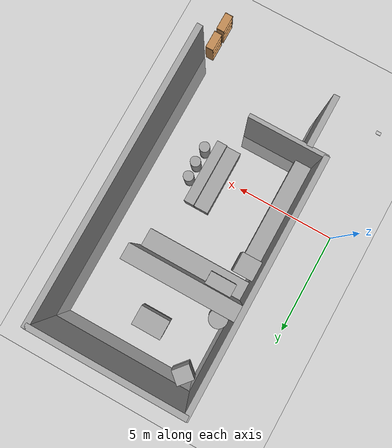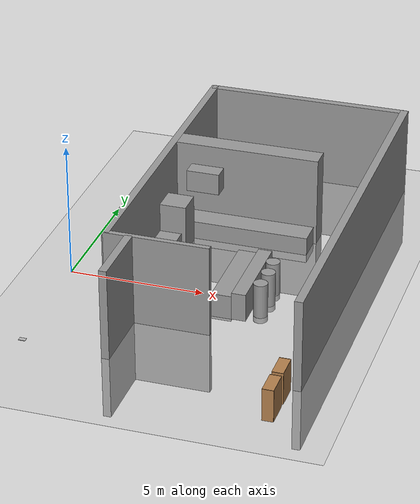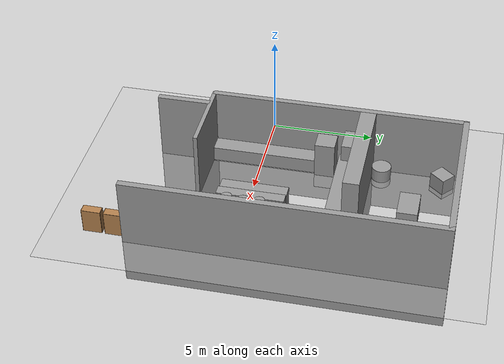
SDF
<sdf version="1.6">
 <world name="default">
  <light name="sun" type="directional">
   <pose>0 0 10 0 -0 0</pose>
   <diffuse>0.8 0.8 0.8 1</diffuse>
   <specular>0.2 0.2 0.2 1</specular>
   <attenuation>
    <range>1000</range>
    <constant>0.9</constant>
    <linear>0.01</linear>
    <quadratic>0.001</quadratic>
   </attenuation>
   <direction>-0.5 0.1 -0.9</direction>
   <spot><inner_angle>0</inner_angle><outer_angle>0</outer_angle><falloff>0</falloff></spot>
  </light>
  <model name="ground_plane">
   <static>1</static>
   <link name="link">
    <collision name="collision">
     <geometry><plane><normal>0 0 1</normal><size>100 100</size></plane></geometry>
     <surface>
      <contact><collide_bitmask>65535</collide_bitmask></contact>
      <friction><ode><mu>100</mu><mu2>50</mu2></ode></friction>
     </surface>
    </collision>
    <visual name="visual">
     <cast_shadows>0</cast_shadows>
     <geometry><plane><normal>0 0 1</normal><size>100 100</size></plane></geometry>
     <material>
      <script><uri>file://media/materials/scripts/gazebo.material</uri><name>Gazebo/Grey</name></script>
     </material>
    </visual>
   </link>
  </model>
  <gravity>0 0 -9.8</gravity>
  <magnetic_field>6e-06 2.3e-05 -4.2e-05</magnetic_field>
  <atmosphere type="adiabatic"/>
  <physics name="default_physics" default="0" type="ode">
   <max_step_size>0.001</max_step_size>
   <real_time_factor>1</real_time_factor>
   <real_time_update_rate>1000</real_time_update_rate>
  </physics>
  <scene><ambient>0.4 0.4 0.4 1</ambient><background>0.7 0.7 0.7 1</background><shadows>1</shadows></scene>
  <spherical_coordinates>
   <surface_model>EARTH_WGS84</surface_model>
   <latitude_deg>0</latitude_deg>
   <longitude_deg>0</longitude_deg>
   <elevation>0</elevation>
   <heading_deg>0</heading_deg>
  </spherical_coordinates>
  <model name="Kitchen-Collision">
   <link name="link_0">
    <inertial>
     <mass>4.16127</mass>
     <inertia><ixx>13.7012</ixx><ixy>0</ixy><ixz>0</ixz><iyy>11.4901</iyy><iyz>0</iyz><izz>2.26737</izz></inertia>
    </inertial>
    <pose>-2.12883 -7.21047 0 0 -0 0</pose>
    <visual name="visual">
     <geometry><box><size>0.28475 2.54114 5.7492</size></box></geometry>
     <material>
      <lighting>1</lighting>
      <script><uri>file://media/materials/scripts/gazebo.material</uri><name>Gazebo/Grey</name></script>
      <shader type="pixel"><normal_map>__default__</normal_map></shader>
      <ambient>0.3 0.3 0.3 1</ambient>
      <diffuse>0.7 0.7 0.7 1</diffuse>
      <specular>0.01 0.01 0.01 1</specular>
      <emissive>0 0 0 1</emissive>
     </material>
    </visual>
    <collision name="collision">
     <geometry><box><size>0.28475 2.54114 5.7492</size></box></geometry>
     <surface>
      <friction>
       <ode><mu>1</mu><mu2>1</mu2><fdir1>0 0 0</fdir1><slip1>0</slip1><slip2>0</slip2></ode>
       <torsional>
        <coefficient>1</coefficient>
        <patch_radius>0</patch_radius>
        <surface_radius>0</surface_radius>
        <use_patch_radius>1</use_patch_radius>
        <ode><slip>0</slip></ode>
       </torsional>
      </friction>
      <bounce><restitution_coefficient>0</restitution_coefficient><threshold>1e+06</threshold></bounce>
      <contact>
       <collide_without_contact>0</collide_without_contact>
       <collide_without_contact_bitmask>1</collide_without_contact_bitmask>
       <collide_bitmask>1</collide_bitmask>
       <ode>
        <soft_cfm>0</soft_cfm>
        <soft_erp>0.2</soft_erp>
        <kp>1e+13</kp>
        <kd>1</kd>
        <max_vel>0.01</max_vel>
        <min_depth>0</min_depth>
       </ode>
       <bullet>
        <split_impulse>1</split_impulse>
        <split_impulse_penetration_threshold>-0.01</split_impulse_penetration_threshold>
        <soft_cfm>0</soft_cfm>
        <soft_erp>0.2</soft_erp>
        <kp>1e+13</kp>
        <kd>1</kd>
       </bullet>
      </contact>
     </surface>
    </collision>
   </link>
   <link name="link_1">
    <inertial>
     <mass>24.9917</mass>
     <inertia><ixx>527.469</ixx><ixy>0</ixy><ixz>0</ixz><iyy>67.9263</iyy><iyz>0</iyz><izz>459.905</izz></inertia>
    </inertial>
    <pose>4.56849 -0.998393 -0 0 -0 0</pose>
    <visual name="visual">
     <geometry><box><size>0.294903 14.8573 5.7492</size></box></geometry>
     <material>
      <lighting>1</lighting>
      <script><uri>file://media/materials/scripts/gazebo.material</uri><name>Gazebo/Grey</name></script>
      <shader type="pixel"><normal_map>__default__</normal_map></shader>
      <ambient>0.3 0.3 0.3 1</ambient>
      <diffuse>0.7 0.7 0.7 1</diffuse>
      <specular>0.01 0.01 0.01 1</specular>
      <emissive>0 0 0 1</emissive>
     </material>
    </visual>
    <collision name="collision">
     <geometry><box><size>0.294903 14.8573 5.7492</size></box></geometry>
     <surface>
      <friction>
       <ode><mu>1</mu><mu2>1</mu2><fdir1>0 0 0</fdir1><slip1>0</slip1><slip2>0</slip2></ode>
       <torsional>
        <coefficient>1</coefficient>
        <patch_radius>0</patch_radius>
        <surface_radius>0</surface_radius>
        <use_patch_radius>1</use_patch_radius>
        <ode><slip>0</slip></ode>
       </torsional>
      </friction>
      <bounce><restitution_coefficient>0</restitution_coefficient><threshold>1e+06</threshold></bounce>
      <contact>
       <collide_without_contact>0</collide_without_contact>
       <collide_without_contact_bitmask>1</collide_without_contact_bitmask>
       <collide_bitmask>1</collide_bitmask>
       <ode>
        <soft_cfm>0</soft_cfm>
        <soft_erp>0.2</soft_erp>
        <kp>1e+13</kp>
        <kd>1</kd>
        <max_vel>0.01</max_vel>
        <min_depth>0</min_depth>
       </ode>
       <bullet>
        <split_impulse>1</split_impulse>
        <split_impulse_penetration_threshold>-0.01</split_impulse_penetration_threshold>
        <soft_cfm>0</soft_cfm>
        <soft_erp>0.2</soft_erp>
        <kp>1e+13</kp>
        <kd>1</kd>
       </bullet>
      </contact>
     </surface>
    </collision>
   </link>
   <link name="link_10">
    <inertial>
     <mass>2.5255</mass>
     <inertia><ixx>1.58164</ixx><ixy>0</ixy><ixz>0</ixz><iyy>1.60172</iyy><iyz>0</iyz><izz>0.415001</izz></inertia>
    </inertial>
    <pose>-2.3651 -0.233248 -0 0 -0 0</pose>
    <visual name="visual">
     <geometry><box><size>1.01669 0.968627 2.56456</size></box></geometry>
     <material>
      <lighting>1</lighting>
      <script><uri>file://media/materials/scripts/gazebo.material</uri><name>Gazebo/Grey</name></script>
      <shader type="pixel"/>
     </material>
    </visual>
    <collision name="collision">
     <geometry><box><size>1.01669 0.968627 2.56456</size></box></geometry>
     <surface>
      <friction>
       <ode><mu>1</mu><mu2>1</mu2><fdir1>0 0 0</fdir1><slip1>0</slip1><slip2>0</slip2></ode>
       <torsional>
        <coefficient>1</coefficient>
        <patch_radius>0</patch_radius>
        <surface_radius>0</surface_radius>
        <use_patch_radius>1</use_patch_radius>
        <ode><slip>0</slip></ode>
       </torsional>
      </friction>
      <bounce><restitution_coefficient>0</restitution_coefficient><threshold>1e+06</threshold></bounce>
      <contact>
       <collide_without_contact>0</collide_without_contact>
       <collide_without_contact_bitmask>1</collide_without_contact_bitmask>
       <collide_bitmask>1</collide_bitmask>
       <ode>
        <soft_cfm>0</soft_cfm>
        <soft_erp>0.2</soft_erp>
        <kp>1e+13</kp>
        <kd>1</kd>
        <max_vel>0.01</max_vel>
        <min_depth>0</min_depth>
       </ode>
       <bullet>
        <split_impulse>1</split_impulse>
        <split_impulse_penetration_threshold>-0.01</split_impulse_penetration_threshold>
        <soft_cfm>0</soft_cfm>
        <soft_erp>0.2</soft_erp>
        <kp>1e+13</kp>
        <kd>1</kd>
       </bullet>
      </contact>
     </surface>
    </collision>
   </link>
   <link name="link_11">
    <inertial>
     <mass>0.636301</mass>
     <inertia>
      <ixx>0.0562669</ixx>
      <ixy>0</ixy>
      <ixz>0</ixz>
      <iyy>0.11806</iyy>
      <iyz>0</iyz>
      <izz>0.102807</izz>
     </inertia>
    </inertial>
    <pose>-1.64952 0.993595 1.66197 0 -0 0</pose>
    <visual name="visual">
     <geometry><box><size>1.24583 0.621885 0.821216</size></box></geometry>
     <material>
      <lighting>1</lighting>
      <script><uri>file://media/materials/scripts/gazebo.material</uri><name>Gazebo/Grey</name></script>
      <shader type="pixel"/>
     </material>
    </visual>
    <collision name="collision">
     <geometry><box><size>1.24583 0.621885 0.821216</size></box></geometry>
     <surface>
      <friction>
       <ode><mu>1</mu><mu2>1</mu2><fdir1>0 0 0</fdir1><slip1>0</slip1><slip2>0</slip2></ode>
       <torsional>
        <coefficient>1</coefficient>
        <patch_radius>0</patch_radius>
        <surface_radius>0</surface_radius>
        <use_patch_radius>1</use_patch_radius>
        <ode><slip>0</slip></ode>
       </torsional>
      </friction>
      <bounce><restitution_coefficient>0</restitution_coefficient><threshold>1e+06</threshold></bounce>
      <contact>
       <collide_without_contact>0</collide_without_contact>
       <collide_without_contact_bitmask>1</collide_without_contact_bitmask>
       <collide_bitmask>1</collide_bitmask>
       <ode>
        <soft_cfm>0</soft_cfm>
        <soft_erp>0.2</soft_erp>
        <kp>1e+13</kp>
        <kd>1</kd>
        <max_vel>0.01</max_vel>
        <min_depth>0</min_depth>
       </ode>
       <bullet>
        <split_impulse>1</split_impulse>
        <split_impulse_penetration_threshold>-0.01</split_impulse_penetration_threshold>
        <soft_cfm>0</soft_cfm>
        <soft_erp>0.2</soft_erp>
        <kp>1e+13</kp>
        <kd>1</kd>
       </bullet>
      </contact>
     </surface>
    </collision>
   </link>
   <link name="link_12">
    <inertial>
     <mass>3.4765</mass>
     <inertia><ixx>8.28125</ixx><ixy>0</ixy><ixz>0</ixz><iyy>0.381759</iyy><iyz>0</iyz><izz>8.30675</izz></inertia>
    </inertial>
    <pose>-2.44063 -3.33135 -0.197222 0 -0 0</pose>
    <visual name="visual">
     <geometry><box><size>0.83838 5.28866 0.784129</size></box></geometry>
     <material>
      <lighting>1</lighting>
      <script><uri>file://media/materials/scripts/gazebo.material</uri><name>Gazebo/Grey</name></script>
      <shader type="pixel"/>
     </material>
    </visual>
    <collision name="collision">
     <geometry><box><size>0.83838 5.28866 0.784129</size></box></geometry>
     <surface>
      <friction>
       <ode><mu>1</mu><mu2>1</mu2><fdir1>0 0 0</fdir1><slip1>0</slip1><slip2>0</slip2></ode>
       <torsional>
        <coefficient>1</coefficient>
        <patch_radius>0</patch_radius>
        <surface_radius>0</surface_radius>
        <use_patch_radius>1</use_patch_radius>
        <ode><slip>0</slip></ode>
       </torsional>
      </friction>
      <bounce><restitution_coefficient>0</restitution_coefficient><threshold>1e+06</threshold></bounce>
      <contact>
       <collide_without_contact>0</collide_without_contact>
       <collide_without_contact_bitmask>1</collide_without_contact_bitmask>
       <collide_bitmask>1</collide_bitmask>
       <ode>
        <soft_cfm>0</soft_cfm>
        <soft_erp>0.2</soft_erp>
        <kp>1e+13</kp>
        <kd>1</kd>
        <max_vel>0.01</max_vel>
        <min_depth>0</min_depth>
       </ode>
       <bullet>
        <split_impulse>1</split_impulse>
        <split_impulse_penetration_threshold>-0.01</split_impulse_penetration_threshold>
        <soft_cfm>0</soft_cfm>
        <soft_erp>0.2</soft_erp>
        <kp>1e+13</kp>
        <kd>1</kd>
       </bullet>
      </contact>
     </surface>
    </collision>
   </link>
   <link name="link_13">
    <inertial>
     <mass>2.3469</mass>
     <inertia><ixx>2.2474</ixx><ixy>0</ixy><ixz>0</ixz><iyy>0.298253</iyy><iyz>0</iyz><izz>2.1545</izz></inertia>
    </inertial>
    <pose>0.783741 -3.13622 -0.129375 0 -0 0</pose>
    <visual name="visual">
     <geometry><box><size>0.724573 3.23901 1</size></box></geometry>
     <material>
      <lighting>1</lighting>
      <script><uri>file://media/materials/scripts/gazebo.material</uri><name>Gazebo/Grey</name></script>
      <shader type="pixel"/>
     </material>
    </visual>
    <collision name="collision">
     <geometry><box><size>0.724573 3.23901 1</size></box></geometry>
     <surface>
      <friction>
       <ode><mu>1</mu><mu2>1</mu2><fdir1>0 0 0</fdir1><slip1>0</slip1><slip2>0</slip2></ode>
       <torsional>
        <coefficient>1</coefficient>
        <patch_radius>0</patch_radius>
        <surface_radius>0</surface_radius>
        <use_patch_radius>1</use_patch_radius>
        <ode><slip>0</slip></ode>
       </torsional>
      </friction>
      <bounce><restitution_coefficient>0</restitution_coefficient><threshold>1e+06</threshold></bounce>
      <contact>
       <collide_without_contact>0</collide_without_contact>
       <collide_without_contact_bitmask>1</collide_without_contact_bitmask>
       <collide_bitmask>1</collide_bitmask>
       <ode>
        <soft_cfm>0</soft_cfm>
        <soft_erp>0.2</soft_erp>
        <kp>1e+13</kp>
        <kd>1</kd>
        <max_vel>0.01</max_vel>
        <min_depth>0</min_depth>
       </ode>
       <bullet>
        <split_impulse>1</split_impulse>
        <split_impulse_penetration_threshold>-0.01</split_impulse_penetration_threshold>
        <soft_cfm>0</soft_cfm>
        <soft_erp>0.2</soft_erp>
        <kp>1e+13</kp>
        <kd>1</kd>
       </bullet>
      </contact>
     </surface>
    </collision>
   </link>
   <link name="link_14">
    <inertial>
     <mass>1.74764</mass>
     <inertia><ixx>1.6992</ixx><ixy>0</ixy><ixz>0</ixz><iyy>0.198313</iyy><iyz>0</iyz><izz>1.5775</izz></inertia>
    </inertial>
    <pose>1.41922 -3.13976 -0 0 -0 0</pose>
    <visual name="visual">
     <geometry><box><size>0.512865 3.25095 1.04817</size></box></geometry>
     <material>
      <lighting>1</lighting>
      <script><uri>file://media/materials/scripts/gazebo.material</uri><name>Gazebo/Grey</name></script>
      <shader type="pixel"/>
     </material>
    </visual>
    <collision name="collision">
     <geometry><box><size>0.512865 3.25095 1.04817</size></box></geometry>
     <surface>
      <friction>
       <ode><mu>1</mu><mu2>1</mu2><fdir1>0 0 0</fdir1><slip1>0</slip1><slip2>0</slip2></ode>
       <torsional>
        <coefficient>1</coefficient>
        <patch_radius>0</patch_radius>
        <surface_radius>0</surface_radius>
        <use_patch_radius>1</use_patch_radius>
        <ode><slip>0</slip></ode>
       </torsional>
      </friction>
      <bounce><restitution_coefficient>0</restitution_coefficient><threshold>1e+06</threshold></bounce>
      <contact>
       <collide_without_contact>0</collide_without_contact>
       <collide_without_contact_bitmask>1</collide_without_contact_bitmask>
       <collide_bitmask>1</collide_bitmask>
       <ode>
        <soft_cfm>0</soft_cfm>
        <soft_erp>0.2</soft_erp>
        <kp>1e+13</kp>
        <kd>1</kd>
        <max_vel>0.01</max_vel>
        <min_depth>0</min_depth>
       </ode>
       <bullet>
        <split_impulse>1</split_impulse>
        <split_impulse_penetration_threshold>-0.01</split_impulse_penetration_threshold>
        <soft_cfm>0</soft_cfm>
        <soft_erp>0.2</soft_erp>
        <kp>1e+13</kp>
        <kd>1</kd>
       </bullet>
      </contact>
     </surface>
    </collision>
   </link>
   <link name="link_15">
    <inertial>
     <mass>0.395316</mass>
     <inertia>
      <ixx>0.0801611</ixx>
      <ixy>0</ixy>
      <ixz>0</ixz>
      <iyy>0.0801611</iyy>
      <iyz>0</iyz>
      <izz>0.0130671</izz>
     </inertia>
    </inertial>
    <pose>2.02268 -2.59375 0 0 -0 0</pose>
    <visual name="visual">
     <geometry><cylinder><radius>0.257118</radius><length>1.49499</length></cylinder></geometry>
     <material>
      <lighting>1</lighting>
      <script><uri>file://media/materials/scripts/gazebo.material</uri><name>Gazebo/Grey</name></script>
      <shader type="pixel"/>
     </material>
    </visual>
    <collision name="collision">
     <geometry><cylinder><radius>0.257118</radius><length>1.49499</length></cylinder></geometry>
     <surface>
      <friction>
       <ode><mu>1</mu><mu2>1</mu2><fdir1>0 0 0</fdir1><slip1>0</slip1><slip2>0</slip2></ode>
       <torsional>
        <coefficient>1</coefficient>
        <patch_radius>0</patch_radius>
        <surface_radius>0</surface_radius>
        <use_patch_radius>1</use_patch_radius>
        <ode><slip>0</slip></ode>
       </torsional>
      </friction>
      <bounce><restitution_coefficient>0</restitution_coefficient><threshold>1e+06</threshold></bounce>
      <contact>
       <collide_without_contact>0</collide_without_contact>
       <collide_without_contact_bitmask>1</collide_without_contact_bitmask>
       <collide_bitmask>1</collide_bitmask>
       <ode>
        <soft_cfm>0</soft_cfm>
        <soft_erp>0.2</soft_erp>
        <kp>1e+13</kp>
        <kd>1</kd>
        <max_vel>0.01</max_vel>
        <min_depth>0</min_depth>
       </ode>
       <bullet>
        <split_impulse>1</split_impulse>
        <split_impulse_penetration_threshold>-0.01</split_impulse_penetration_threshold>
        <soft_cfm>0</soft_cfm>
        <soft_erp>0.2</soft_erp>
        <kp>1e+13</kp>
        <kd>1</kd>
       </bullet>
      </contact>
     </surface>
    </collision>
   </link>
   <link name="link_15_clone">
    <inertial>
     <mass>0.395316</mass>
     <inertia>
      <ixx>0.0801611</ixx>
      <ixy>0</ixy>
      <ixz>0</ixz>
      <iyy>0.0801611</iyy>
      <iyz>0</iyz>
      <izz>0.0130671</izz>
     </inertia>
    </inertial>
    <pose>2.07243 -3.34973 -0 0 -0 0</pose>
    <visual name="visual">
     <geometry><cylinder><radius>0.257118</radius><length>1.49499</length></cylinder></geometry>
     <material>
      <lighting>1</lighting>
      <script><uri>file://media/materials/scripts/gazebo.material</uri><name>Gazebo/Grey</name></script>
      <shader type="pixel"/>
     </material>
    </visual>
    <collision name="collision">
     <geometry><cylinder><radius>0.257118</radius><length>1.49499</length></cylinder></geometry>
     <surface>
      <friction>
       <ode><mu>1</mu><mu2>1</mu2><fdir1>0 0 0</fdir1><slip1>0</slip1><slip2>0</slip2></ode>
       <torsional>
        <coefficient>1</coefficient>
        <patch_radius>0</patch_radius>
        <surface_radius>0</surface_radius>
        <use_patch_radius>1</use_patch_radius>
        <ode><slip>0</slip></ode>
       </torsional>
      </friction>
      <bounce><restitution_coefficient>0</restitution_coefficient><threshold>1e+06</threshold></bounce>
      <contact>
       <collide_without_contact>0</collide_without_contact>
       <collide_without_contact_bitmask>1</collide_without_contact_bitmask>
       <collide_bitmask>1</collide_bitmask>
       <ode>
        <soft_cfm>0</soft_cfm>
        <soft_erp>0.2</soft_erp>
        <kp>1e+13</kp>
        <kd>1</kd>
        <max_vel>0.01</max_vel>
        <min_depth>0</min_depth>
       </ode>
       <bullet>
        <split_impulse>1</split_impulse>
        <split_impulse_penetration_threshold>-0.01</split_impulse_penetration_threshold>
        <soft_cfm>0</soft_cfm>
        <soft_erp>0.2</soft_erp>
        <kp>1e+13</kp>
        <kd>1</kd>
       </bullet>
      </contact>
     </surface>
    </collision>
   </link>
   <link name="link_15_clone_0">
    <inertial>
     <mass>0.395316</mass>
     <inertia>
      <ixx>0.0801611</ixx>
      <ixy>0</ixy>
      <ixz>0</ixz>
      <iyy>0.0801611</iyy>
      <iyz>0</iyz>
      <izz>0.0130671</izz>
     </inertia>
    </inertial>
    <pose>2.03304 -4.15741 0 0 -0 0</pose>
    <visual name="visual">
     <geometry><cylinder><radius>0.257118</radius><length>1.49499</length></cylinder></geometry>
     <material>
      <lighting>1</lighting>
      <script><uri>file://media/materials/scripts/gazebo.material</uri><name>Gazebo/Grey</name></script>
      <shader type="pixel"/>
     </material>
    </visual>
    <collision name="collision">
     <geometry><cylinder><radius>0.257118</radius><length>1.49499</length></cylinder></geometry>
     <surface>
      <friction>
       <ode><mu>1</mu><mu2>1</mu2><fdir1>0 0 0</fdir1><slip1>0</slip1><slip2>0</slip2></ode>
       <torsional>
        <coefficient>1</coefficient>
        <patch_radius>0</patch_radius>
        <surface_radius>0</surface_radius>
        <use_patch_radius>1</use_patch_radius>
        <ode><slip>0</slip></ode>
       </torsional>
      </friction>
      <bounce><restitution_coefficient>0</restitution_coefficient><threshold>1e+06</threshold></bounce>
      <contact>
       <collide_without_contact>0</collide_without_contact>
       <collide_without_contact_bitmask>1</collide_without_contact_bitmask>
       <collide_bitmask>1</collide_bitmask>
       <ode>
        <soft_cfm>0</soft_cfm>
        <soft_erp>0.2</soft_erp>
        <kp>1e+13</kp>
        <kd>1</kd>
        <max_vel>0.01</max_vel>
        <min_depth>0</min_depth>
       </ode>
       <bullet>
        <split_impulse>1</split_impulse>
        <split_impulse_penetration_threshold>-0.01</split_impulse_penetration_threshold>
        <soft_cfm>0</soft_cfm>
        <soft_erp>0.2</soft_erp>
        <kp>1e+13</kp>
        <kd>1</kd>
       </bullet>
      </contact>
     </surface>
    </collision>
   </link>
   <link name="link_2">
    <inertial>
     <mass>12.2812</mass>
     <inertia><ixx>33.4103</ixx><ixy>0</ixy><ixz>0</ixz><iyy>93.3622</iyy><iyz>0</iyz><izz>60.1135</izz></inertia>
    </inertial>
    <pose>0.773767 6.29954 -0 0 -0 0</pose>
    <visual name="visual">
     <geometry><box><size>7.65885 0.281009 5.7492</size></box></geometry>
     <material>
      <lighting>1</lighting>
      <script><uri>file://media/materials/scripts/gazebo.material</uri><name>Gazebo/Grey</name></script>
      <shader type="pixel"><normal_map>__default__</normal_map></shader>
      <ambient>0.3 0.3 0.3 1</ambient>
      <diffuse>0.7 0.7 0.7 1</diffuse>
      <specular>0.01 0.01 0.01 1</specular>
      <emissive>0 0 0 1</emissive>
     </material>
    </visual>
    <collision name="collision">
     <geometry><box><size>7.65885 0.281009 5.7492</size></box></geometry>
     <surface>
      <friction>
       <ode><mu>1</mu><mu2>1</mu2><fdir1>0 0 0</fdir1><slip1>0</slip1><slip2>0</slip2></ode>
       <torsional>
        <coefficient>1</coefficient>
        <patch_radius>0</patch_radius>
        <surface_radius>0</surface_radius>
        <use_patch_radius>1</use_patch_radius>
        <ode><slip>0</slip></ode>
       </torsional>
      </friction>
      <bounce><restitution_coefficient>0</restitution_coefficient><threshold>1e+06</threshold></bounce>
      <contact>
       <collide_without_contact>0</collide_without_contact>
       <collide_without_contact_bitmask>1</collide_without_contact_bitmask>
       <collide_bitmask>1</collide_bitmask>
       <ode>
        <soft_cfm>0</soft_cfm>
        <soft_erp>0.2</soft_erp>
        <kp>1e+13</kp>
        <kd>1</kd>
        <max_vel>0.01</max_vel>
        <min_depth>0</min_depth>
       </ode>
       <bullet>
        <split_impulse>1</split_impulse>
        <split_impulse_penetration_threshold>-0.01</split_impulse_penetration_threshold>
        <soft_cfm>0</soft_cfm>
        <soft_erp>0.2</soft_erp>
        <kp>1e+13</kp>
        <kd>1</kd>
       </bullet>
      </contact>
     </surface>
    </collision>
   </link>
   <link name="link_3">
    <inertial>
     <mass>19.2476</mass>
     <inertia><ixx>297.609</ixx><ixy>0</ixy><ixz>0</ixz><iyy>52.3469</iyy><iyz>0</iyz><izz>245.501</izz></inertia>
    </inertial>
    <pose>-2.983 0.238067 -0 0 -0 0</pose>
    <visual name="visual">
     <geometry><box><size>0.272676 12.3687 5.7492</size></box></geometry>
     <material>
      <lighting>1</lighting>
      <script><uri>file://media/materials/scripts/gazebo.material</uri><name>Gazebo/Grey</name></script>
      <shader type="pixel"><normal_map>__default__</normal_map></shader>
      <ambient>0.3 0.3 0.3 1</ambient>
      <diffuse>0.7 0.7 0.7 1</diffuse>
      <specular>0.01 0.01 0.01 1</specular>
      <emissive>0 0 0 1</emissive>
     </material>
    </visual>
    <collision name="collision">
     <geometry><box><size>0.272676 12.3687 5.7492</size></box></geometry>
     <surface>
      <friction>
       <ode><mu>1</mu><mu2>1</mu2><fdir1>0 0 0</fdir1><slip1>0</slip1><slip2>0</slip2></ode>
       <torsional>
        <coefficient>1</coefficient>
        <patch_radius>0</patch_radius>
        <surface_radius>0</surface_radius>
        <use_patch_radius>1</use_patch_radius>
        <ode><slip>0</slip></ode>
       </torsional>
      </friction>
      <bounce><restitution_coefficient>0</restitution_coefficient><threshold>1e+06</threshold></bounce>
      <contact>
       <collide_without_contact>0</collide_without_contact>
       <collide_without_contact_bitmask>1</collide_without_contact_bitmask>
       <collide_bitmask>1</collide_bitmask>
       <ode>
        <soft_cfm>0</soft_cfm>
        <soft_erp>0.2</soft_erp>
        <kp>1e+13</kp>
        <kd>1</kd>
        <max_vel>0.01</max_vel>
        <min_depth>0</min_depth>
       </ode>
       <bullet>
        <split_impulse>1</split_impulse>
        <split_impulse_penetration_threshold>-0.01</split_impulse_penetration_threshold>
        <soft_cfm>0</soft_cfm>
        <soft_erp>0.2</soft_erp>
        <kp>1e+13</kp>
        <kd>1</kd>
       </bullet>
      </contact>
     </surface>
    </collision>
   </link>
   <link name="link_4">
    <inertial>
     <mass>26.7901</mass>
     <inertia><ixx>89.7843</ixx><ixy>0</ixy><ixz>0</ixz><iyy>157.635</iyy><iyz>0</iyz><izz>70.4608</izz></inertia>
    </inertial>
    <pose>-0.230433 1.67127 -0 0 -0 0</pose>
    <visual name="visual">
     <geometry><box><size>5.56567 0.764598 5.74919</size></box></geometry>
     <material>
      <lighting>1</lighting>
      <script><uri>file://media/materials/scripts/gazebo.material</uri><name>Gazebo/Grey</name></script>
      <shader type="pixel"><normal_map>__default__</normal_map></shader>
      <ambient>0.3 0.3 0.3 1</ambient>
      <diffuse>0.7 0.7 0.7 1</diffuse>
      <specular>0.01 0.01 0.01 1</specular>
      <emissive>0 0 0 1</emissive>
     </material>
    </visual>
    <collision name="collision">
     <geometry><box><size>5.56567 0.764598 5.74919</size></box></geometry>
     <surface>
      <friction>
       <ode><mu>1</mu><mu2>1</mu2><fdir1>0 0 0</fdir1><slip1>0</slip1><slip2>0</slip2></ode>
       <torsional>
        <coefficient>1</coefficient>
        <patch_radius>0</patch_radius>
        <surface_radius>0</surface_radius>
        <use_patch_radius>1</use_patch_radius>
        <ode><slip>0</slip></ode>
       </torsional>
      </friction>
      <bounce><restitution_coefficient>0</restitution_coefficient><threshold>1e+06</threshold></bounce>
      <contact>
       <collide_without_contact>0</collide_without_contact>
       <collide_without_contact_bitmask>1</collide_without_contact_bitmask>
       <collide_bitmask>1</collide_bitmask>
       <ode>
        <soft_cfm>0</soft_cfm>
        <soft_erp>0.2</soft_erp>
        <kp>1e+13</kp>
        <kd>1</kd>
        <max_vel>0.01</max_vel>
        <min_depth>0</min_depth>
       </ode>
       <bullet>
        <split_impulse>1</split_impulse>
        <split_impulse_penetration_threshold>-0.01</split_impulse_penetration_threshold>
        <soft_cfm>0</soft_cfm>
        <soft_erp>0.2</soft_erp>
        <kp>1e+13</kp>
        <kd>1</kd>
       </bullet>
      </contact>
     </surface>
    </collision>
   </link>
   <link name="link_5">
    <inertial>
     <mass>4.27559</mass>
     <inertia><ixx>11.7131</ixx><ixy>0</ixy><ixz>0</ixz><iyy>16.9067</iyy><iyz>0</iyz><izz>5.22079</izz></inertia>
    </inertial>
    <pose>-1.14694 -5.8998 0 0 -0 0</pose>
    <visual name="visual">
     <geometry><box><size>3.82292 0.195177 5.74919</size></box></geometry>
     <material>
      <lighting>1</lighting>
      <script><uri>file://media/materials/scripts/gazebo.material</uri><name>Gazebo/Grey</name></script>
      <shader type="pixel"><normal_map>__default__</normal_map></shader>
      <ambient>0.3 0.3 0.3 1</ambient>
      <diffuse>0.7 0.7 0.7 1</diffuse>
      <specular>0.01 0.01 0.01 1</specular>
      <emissive>0 0 0 1</emissive>
     </material>
    </visual>
    <collision name="collision">
     <geometry><box><size>3.82292 0.195177 5.74919</size></box></geometry>
     <surface>
      <friction>
       <ode><mu>1</mu><mu2>1</mu2><fdir1>0 0 0</fdir1><slip1>0</slip1><slip2>0</slip2></ode>
       <torsional>
        <coefficient>1</coefficient>
        <patch_radius>0</patch_radius>
        <surface_radius>0</surface_radius>
        <use_patch_radius>1</use_patch_radius>
        <ode><slip>0</slip></ode>
       </torsional>
      </friction>
      <bounce><restitution_coefficient>0</restitution_coefficient><threshold>1e+06</threshold></bounce>
      <contact>
       <collide_without_contact>0</collide_without_contact>
       <collide_without_contact_bitmask>1</collide_without_contact_bitmask>
       <collide_bitmask>1</collide_bitmask>
       <ode>
        <soft_cfm>0</soft_cfm>
        <soft_erp>0.2</soft_erp>
        <kp>1e+13</kp>
        <kd>1</kd>
        <max_vel>0.01</max_vel>
        <min_depth>0</min_depth>
       </ode>
       <bullet>
        <split_impulse>1</split_impulse>
        <split_impulse_penetration_threshold>-0.01</split_impulse_penetration_threshold>
        <soft_cfm>0</soft_cfm>
        <soft_erp>0.2</soft_erp>
        <kp>1e+13</kp>
        <kd>1</kd>
       </bullet>
      </contact>
     </surface>
    </collision>
   </link>
   <link name="link_6">
    <inertial>
     <mass>0.959769</mass>
     <inertia>
      <ixx>0.153648</ixx>
      <ixy>0</ixy>
      <ixz>0</ixz>
      <iyy>0.139287</iyy>
      <iyz>0</iyz>
      <izz>0.105542</izz>
     </inertia>
    </inertial>
    <pose>-2.17645 5.48623 -0.273514 0 0 -0.708828</pose>
    <visual name="visual">
     <geometry><box><size>0.754993 0.865784 1.08235</size></box></geometry>
     <material>
      <lighting>1</lighting>
      <script><uri>file://media/materials/scripts/gazebo.material</uri><name>Gazebo/Grey</name></script>
      <shader type="pixel"><normal_map>__default__</normal_map></shader>
      <ambient>0.3 0.3 0.3 1</ambient>
      <diffuse>0.7 0.7 0.7 1</diffuse>
      <specular>0.01 0.01 0.01 1</specular>
      <emissive>0 0 0 1</emissive>
     </material>
    </visual>
    <collision name="collision">
     <geometry><box><size>0.754993 0.865784 1.08235</size></box></geometry>
     <surface>
      <friction>
       <ode><mu>1</mu><mu2>1</mu2><fdir1>0 0 0</fdir1><slip1>0</slip1><slip2>0</slip2></ode>
       <torsional>
        <coefficient>1</coefficient>
        <patch_radius>0</patch_radius>
        <surface_radius>0</surface_radius>
        <use_patch_radius>1</use_patch_radius>
        <ode><slip>0</slip></ode>
       </torsional>
      </friction>
      <bounce><restitution_coefficient>0</restitution_coefficient><threshold>1e+06</threshold></bounce>
      <contact>
       <collide_without_contact>0</collide_without_contact>
       <collide_without_contact_bitmask>1</collide_without_contact_bitmask>
       <collide_bitmask>1</collide_bitmask>
       <ode>
        <soft_cfm>0</soft_cfm>
        <soft_erp>0.2</soft_erp>
        <kp>1e+13</kp>
        <kd>1</kd>
        <max_vel>0.01</max_vel>
        <min_depth>0</min_depth>
       </ode>
       <bullet>
        <split_impulse>1</split_impulse>
        <split_impulse_penetration_threshold>-0.01</split_impulse_penetration_threshold>
        <soft_cfm>0</soft_cfm>
        <soft_erp>0.2</soft_erp>
        <kp>1e+13</kp>
        <kd>1</kd>
       </bullet>
      </contact>
     </surface>
    </collision>
   </link>
   <link name="link_7">
    <inertial>
     <mass>0.873189</mass>
     <inertia>
      <ixx>0.12042</ixx>
      <ixy>0</ixy>
      <ixz>0</ixz>
      <iyy>0.12042</iyy>
      <iyz>0</iyz>
      <izz>0.0953094</izz>
     </inertia>
    </inertial>
    <pose>-2.37739 2.51218 -0.378889 0 -0 0</pose>
    <visual name="visual">
     <geometry><cylinder><radius>0.467228</radius><length>1</length></cylinder></geometry>
     <material>
      <lighting>1</lighting>
      <script><uri>file://media/materials/scripts/gazebo.material</uri><name>Gazebo/Grey</name></script>
      <shader type="pixel"/>
     </material>
    </visual>
    <collision name="collision">
     <geometry><cylinder><radius>0.467228</radius><length>1</length></cylinder></geometry>
     <surface>
      <friction>
       <ode><mu>1</mu><mu2>1</mu2><fdir1>0 0 0</fdir1><slip1>0</slip1><slip2>0</slip2></ode>
       <torsional>
        <coefficient>1</coefficient>
        <patch_radius>0</patch_radius>
        <surface_radius>0</surface_radius>
        <use_patch_radius>1</use_patch_radius>
        <ode><slip>0</slip></ode>
       </torsional>
      </friction>
      <bounce><restitution_coefficient>0</restitution_coefficient><threshold>1e+06</threshold></bounce>
      <contact>
       <collide_without_contact>0</collide_without_contact>
       <collide_without_contact_bitmask>1</collide_without_contact_bitmask>
       <collide_bitmask>1</collide_bitmask>
       <ode>
        <soft_cfm>0</soft_cfm>
        <soft_erp>0.2</soft_erp>
        <kp>1e+13</kp>
        <kd>1</kd>
        <max_vel>0.01</max_vel>
        <min_depth>0</min_depth>
       </ode>
       <bullet>
        <split_impulse>1</split_impulse>
        <split_impulse_penetration_threshold>-0.01</split_impulse_penetration_threshold>
        <soft_cfm>0</soft_cfm>
        <soft_erp>0.2</soft_erp>
        <kp>1e+13</kp>
        <kd>1</kd>
       </bullet>
      </contact>
     </surface>
    </collision>
   </link>
   <link name="link_8">
    <inertial>
     <mass>1.47856</mass>
     <inertia>
      <ixx>0.240725</ixx>
      <ixy>0</ixy>
      <ixz>0</ixz>
      <iyy>0.405643</iyy>
      <iyz>0</iyz>
      <izz>0.399942</izz>
     </inertia>
    </inertial>
    <pose>0.270435 4.15037 -0.243614 0 -0 0</pose>
    <visual name="visual">
     <geometry><box><size>1.514 0.976589 1</size></box></geometry>
     <material>
      <lighting>1</lighting>
      <script><uri>file://media/materials/scripts/gazebo.material</uri><name>Gazebo/Grey</name></script>
      <shader type="pixel"/>
     </material>
    </visual>
    <collision name="collision">
     <geometry><box><size>1.514 0.976589 1</size></box></geometry>
     <surface>
      <friction>
       <ode><mu>1</mu><mu2>1</mu2><fdir1>0 0 0</fdir1><slip1>0</slip1><slip2>0</slip2></ode>
       <torsional>
        <coefficient>1</coefficient>
        <patch_radius>0</patch_radius>
        <surface_radius>0</surface_radius>
        <use_patch_radius>1</use_patch_radius>
        <ode><slip>0</slip></ode>
       </torsional>
      </friction>
      <bounce><restitution_coefficient>0</restitution_coefficient><threshold>1e+06</threshold></bounce>
      <contact>
       <collide_without_contact>0</collide_without_contact>
       <collide_without_contact_bitmask>1</collide_without_contact_bitmask>
       <collide_bitmask>1</collide_bitmask>
       <ode>
        <soft_cfm>0</soft_cfm>
        <soft_erp>0.2</soft_erp>
        <kp>1e+13</kp>
        <kd>1</kd>
        <max_vel>0.01</max_vel>
        <min_depth>0</min_depth>
       </ode>
       <bullet>
        <split_impulse>1</split_impulse>
        <split_impulse_penetration_threshold>-0.01</split_impulse_penetration_threshold>
        <soft_cfm>0</soft_cfm>
        <soft_erp>0.2</soft_erp>
        <kp>1e+13</kp>
        <kd>1</kd>
       </bullet>
      </contact>
     </surface>
    </collision>
   </link>
   <link name="link_9">
    <inertial>
     <mass>5.34483</mass>
     <inertia><ixx>0.890804</ixx><ixy>0</ixy><ixz>0</ixz><iyy>13.1694</iyy><iyz>0</iyz><izz>13.1694</izz></inertia>
    </inertial>
    <pose>-0.231639 0.866397 -0.344172 0 -0 0</pose>
    <visual name="visual">
     <geometry><box><size>5.34484 1 1</size></box></geometry>
     <material>
      <lighting>1</lighting>
      <script><uri>file://media/materials/scripts/gazebo.material</uri><name>Gazebo/Grey</name></script>
      <shader type="pixel"/>
     </material>
    </visual>
    <collision name="collision">
     <geometry><box><size>5.34484 1 1</size></box></geometry>
     <surface>
      <friction>
       <ode><mu>1</mu><mu2>1</mu2><fdir1>0 0 0</fdir1><slip1>0</slip1><slip2>0</slip2></ode>
       <torsional>
        <coefficient>1</coefficient>
        <patch_radius>0</patch_radius>
        <surface_radius>0</surface_radius>
        <use_patch_radius>1</use_patch_radius>
        <ode><slip>0</slip></ode>
       </torsional>
      </friction>
      <bounce><restitution_coefficient>0</restitution_coefficient><threshold>1e+06</threshold></bounce>
      <contact>
       <collide_without_contact>0</collide_without_contact>
       <collide_without_contact_bitmask>1</collide_without_contact_bitmask>
       <collide_bitmask>1</collide_bitmask>
       <ode>
        <soft_cfm>0</soft_cfm>
        <soft_erp>0.2</soft_erp>
        <kp>1e+13</kp>
        <kd>1</kd>
        <max_vel>0.01</max_vel>
        <min_depth>0</min_depth>
       </ode>
       <bullet>
        <split_impulse>1</split_impulse>
        <split_impulse_penetration_threshold>-0.01</split_impulse_penetration_threshold>
        <soft_cfm>0</soft_cfm>
        <soft_erp>0.2</soft_erp>
        <kp>1e+13</kp>
        <kd>1</kd>
       </bullet>
      </contact>
     </surface>
    </collision>
   </link>
   <static>1</static>
   <pose>5.32919 3.40648 0.517047 0 -0 0</pose>
  </model>
  <model name="bookshelf_0">
   <static>1</static>
   <link name="link">
    <inertial><mass>1</mass></inertial>
    <collision name="back">
     <pose>0 0.005 0.6 0 -0 0</pose>
     <geometry><box><size>0.9 0.01 1.2</size></box></geometry>
    </collision>
    <visual name="visual1">
     <pose>0 0.005 0.6 0 -0 0</pose>
     <geometry><box><size>0.9 0.01 1.2</size></box></geometry>
     <material>
      <script><uri>file://media/materials/scripts/gazebo.material</uri><name>Gazebo/Wood</name></script>
     </material>
    </visual>
    <collision name="left_side">
     <pose>0.45 -0.195 0.6 0 -0 0</pose>
     <geometry><box><size>0.02 0.4 1.2</size></box></geometry>
    </collision>
    <visual name="visual2">
     <pose>0.45 -0.195 0.6 0 -0 0</pose>
     <geometry><box><size>0.02 0.4 1.2</size></box></geometry>
     <material>
      <script><uri>file://media/materials/scripts/gazebo.material</uri><name>Gazebo/Wood</name></script>
     </material>
    </visual>
    <collision name="right_side">
     <pose>-0.45 -0.195 0.6 0 -0 0</pose>
     <geometry><box><size>0.02 0.4 1.2</size></box></geometry>
    </collision>
    <visual name="visual3">
     <pose>-0.45 -0.195 0.6 0 -0 0</pose>
     <geometry><box><size>0.02 0.4 1.2</size></box></geometry>
     <material>
      <script><uri>file://media/materials/scripts/gazebo.material</uri><name>Gazebo/Wood</name></script>
     </material>
    </visual>
    <collision name="bottom">
     <pose>0 -0.195 0.03 0 -0 0</pose>
     <geometry><box><size>0.88 0.4 0.06</size></box></geometry>
    </collision>
    <visual name="visual4">
     <pose>0 -0.195 0.03 0 -0 0</pose>
     <geometry><box><size>0.88 0.4 0.06</size></box></geometry>
     <material>
      <script><uri>file://media/materials/scripts/gazebo.material</uri><name>Gazebo/Wood</name></script>
     </material>
    </visual>
    <collision name="top">
     <pose>0 -0.195 1.19 0 -0 0</pose>
     <geometry><box><size>0.88 0.4 0.02</size></box></geometry>
    </collision>
    <visual name="visual5">
     <pose>0 -0.195 1.19 0 -0 0</pose>
     <geometry><box><size>0.88 0.4 0.02</size></box></geometry>
     <material>
      <script><uri>file://media/materials/scripts/gazebo.material</uri><name>Gazebo/Wood</name></script>
     </material>
    </visual>
    <collision name="low_shelf">
     <pose>0 -0.195 0.43 0 -0 0</pose>
     <geometry><box><size>0.88 0.4 0.02</size></box></geometry>
    </collision>
    <visual name="visual6">
     <pose>0 -0.195 0.43 0 -0 0</pose>
     <geometry><box><size>0.88 0.4 0.02</size></box></geometry>
     <material>
      <script><uri>file://media/materials/scripts/gazebo.material</uri><name>Gazebo/Wood</name></script>
     </material>
    </visual>
    <collision name="high_shelf">
     <pose>0 -0.195 0.8 0 -0 0</pose>
     <geometry><box><size>0.88 0.4 0.02</size></box></geometry>
    </collision>
    <visual name="visual7">
     <pose>0 -0.195 0.8 0 -0 0</pose>
     <geometry><box><size>0.88 0.4 0.02</size></box></geometry>
     <material>
      <script><uri>file://media/materials/scripts/gazebo.material</uri><name>Gazebo/Wood</name></script>
     </material>
    </visual>
   </link>
   <pose>9.68548 -5.50542 0 0 0 -1.5708</pose>
  </model>
  <model name="bookshelf_0_clone">
   <static>1</static>
   <link name="link">
    <inertial><mass>1</mass></inertial>
    <collision name="back">
     <pose>0 0.005 0.6 0 -0 0</pose>
     <geometry><box><size>0.9 0.01 1.2</size></box></geometry>
    </collision>
    <visual name="visual1">
     <pose>0 0.005 0.6 0 -0 0</pose>
     <geometry><box><size>0.9 0.01 1.2</size></box></geometry>
     <material>
      <script><uri>file://media/materials/scripts/gazebo.material</uri><name>Gazebo/Wood</name></script>
     </material>
    </visual>
    <collision name="left_side">
     <pose>0.45 -0.195 0.6 0 -0 0</pose>
     <geometry><box><size>0.02 0.4 1.2</size></box></geometry>
    </collision>
    <visual name="visual2">
     <pose>0.45 -0.195 0.6 0 -0 0</pose>
     <geometry><box><size>0.02 0.4 1.2</size></box></geometry>
     <material>
      <script><uri>file://media/materials/scripts/gazebo.material</uri><name>Gazebo/Wood</name></script>
     </material>
    </visual>
    <collision name="right_side">
     <pose>-0.45 -0.195 0.6 0 -0 0</pose>
     <geometry><box><size>0.02 0.4 1.2</size></box></geometry>
    </collision>
    <visual name="visual3">
     <pose>-0.45 -0.195 0.6 0 -0 0</pose>
     <geometry><box><size>0.02 0.4 1.2</size></box></geometry>
     <material>
      <script><uri>file://media/materials/scripts/gazebo.material</uri><name>Gazebo/Wood</name></script>
     </material>
    </visual>
    <collision name="bottom">
     <pose>0 -0.195 0.03 0 -0 0</pose>
     <geometry><box><size>0.88 0.4 0.06</size></box></geometry>
    </collision>
    <visual name="visual4">
     <pose>0 -0.195 0.03 0 -0 0</pose>
     <geometry><box><size>0.88 0.4 0.06</size></box></geometry>
     <material>
      <script><uri>file://media/materials/scripts/gazebo.material</uri><name>Gazebo/Wood</name></script>
     </material>
    </visual>
    <collision name="top">
     <pose>0 -0.195 1.19 0 -0 0</pose>
     <geometry><box><size>0.88 0.4 0.02</size></box></geometry>
    </collision>
    <visual name="visual5">
     <pose>0 -0.195 1.19 0 -0 0</pose>
     <geometry><box><size>0.88 0.4 0.02</size></box></geometry>
     <material>
      <script><uri>file://media/materials/scripts/gazebo.material</uri><name>Gazebo/Wood</name></script>
     </material>
    </visual>
    <collision name="low_shelf">
     <pose>0 -0.195 0.43 0 -0 0</pose>
     <geometry><box><size>0.88 0.4 0.02</size></box></geometry>
    </collision>
    <visual name="visual6">
     <pose>0 -0.195 0.43 0 -0 0</pose>
     <geometry><box><size>0.88 0.4 0.02</size></box></geometry>
     <material>
      <script><uri>file://media/materials/scripts/gazebo.material</uri><name>Gazebo/Wood</name></script>
     </material>
    </visual>
    <collision name="high_shelf">
     <pose>0 -0.195 0.8 0 -0 0</pose>
     <geometry><box><size>0.88 0.4 0.02</size></box></geometry>
    </collision>
    <visual name="visual7">
     <pose>0 -0.195 0.8 0 -0 0</pose>
     <geometry><box><size>0.88 0.4 0.02</size></box></geometry>
     <material>
      <script><uri>file://media/materials/scripts/gazebo.material</uri><name>Gazebo/Wood</name></script>
     </material>
    </visual>
   </link>
   <pose>9.67221 -6.56464 0 0 0 -1.5708</pose>
  </model>
  <audio><device>default</device></audio>
  <model name="book_3">
   <link name="cover">
    <pose>0 -0.000108 0.01 0 -0 0</pose>
    <visual name="visual">
     <geometry><box><size>0.245 0.16 0.02</size></box></geometry>
     <material>
      <script>
       <uri>model://book_3/materials/scripts</uri>
       <uri>model://book_3/materials/textures</uri>
       <name>book_3</name>
      </script>
     </material>
    </visual>
    <collision name="collision"><geometry><box><size>0.245 0.16 0.02</size></box></geometry></collision>
   </link>
   <link name="page">
    <pose>0 0.000608 0.01 0 -0 0</pose>
    <visual name="visual">
     <geometry><box><size>0.24502 0.15862 0.018</size></box></geometry>
     <material>
      <lighting>1</lighting>
      <ambient>1 1 1 1</ambient>
      <diffuse>1 1 1 1</diffuse>
      <specular>0.01 0.01 0.01 1</specular>
      <emissive>0 0 0 1</emissive>
      <shader type="vertex"><normal_map>__default__</normal_map></shader>
     </material>
    </visual>
    <collision name="collision"><geometry><box><size>0.245 0.16 0.018</size></box></geometry></collision>
   </link>
   <static>1</static>
   <pose>0.415012 -5.53972 0.506277 0 -0 0</pose>
  </model>
 </world>
</sdf>
